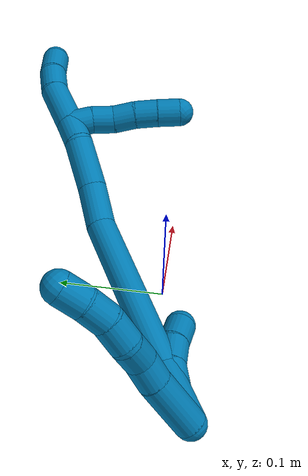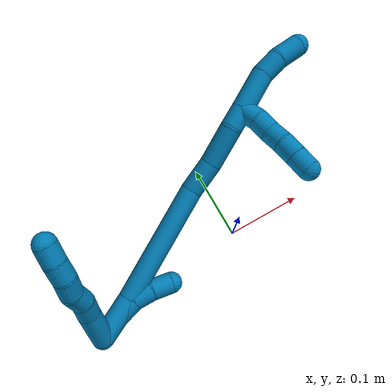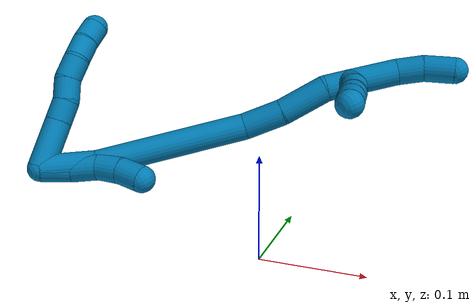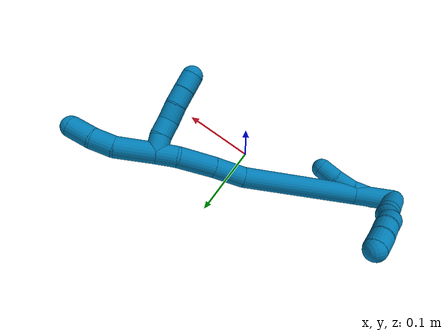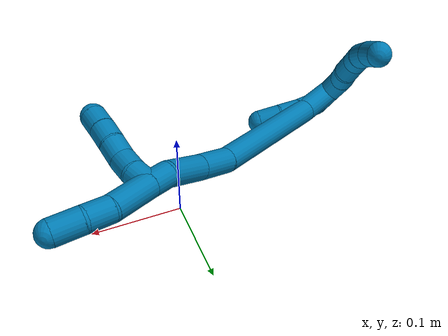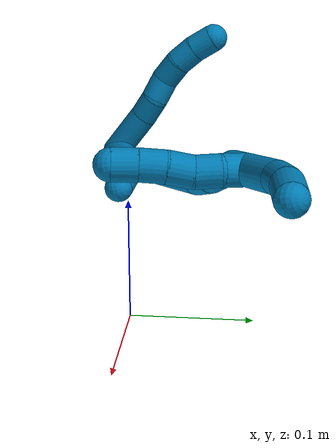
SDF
<sdf version="1.7">
 <world name="default">
  <model name="9">
   <static>0</static>
   <link name="9">
    <collision name="collision-cylinder-e_1_2_8">
     <pose>-0.009399 -0.012065 0.017365 0.607242 -0.418296 -0.132805</pose>
     <geometry><cylinder><radius>0.0125</radius><length>0.04628</length></cylinder></geometry>
     <surface>
      <friction><ode><mu>1.16</mu><mu2>1.16</mu2><slip1>0</slip1><slip2>0</slip2></ode></friction>
      <contact><ode><kp>1e+06</kp><kd>1</kd><max_vel>0</max_vel><min_depth>0.001</min_depth></ode></contact>
     </surface>
    </collision>
    <visual name="visual-cylinder-e_1_2_8">
     <pose>-0.009399 -0.012065 0.017365 0.607242 -0.418296 -0.132805</pose>
     <geometry><cylinder><radius>0.0125</radius><length>0.04628</length></cylinder></geometry>
     <material><ambient>0 0.490196 0.709804 1</ambient></material>
    </visual>
    <collision name="collision-cylinder-e_2_8_9">
     <pose>-0.022232 -0.030338 0.042408 0.679841 -0.334618 -0.119312</pose>
     <geometry><cylinder><radius>0.0125</radius><length>0.020907</length></cylinder></geometry>
     <surface>
      <friction><ode><mu>1.16</mu><mu2>1.16</mu2><slip1>0</slip1><slip2>0</slip2></ode></friction>
      <contact><ode><kp>1e+06</kp><kd>1</kd><max_vel>0</max_vel><min_depth>0.001</min_depth></ode></contact>
     </surface>
    </collision>
    <visual name="visual-cylinder-e_2_8_9">
     <pose>-0.022232 -0.030338 0.042408 0.679841 -0.334618 -0.119312</pose>
     <geometry><cylinder><radius>0.0125</radius><length>0.020907</length></cylinder></geometry>
     <material><ambient>0 0.490196 0.709804 1</ambient></material>
    </visual>
    <collision name="collision-cylinder-e_3_9_10">
     <pose>-0.031421 -0.04313 0.055747 0.860724 -0.58533 -0.274901</pose>
     <geometry><cylinder><radius>0.0125</radius><length>0.020835</length></cylinder></geometry>
     <surface>
      <friction><ode><mu>1.16</mu><mu2>1.16</mu2><slip1>0</slip1><slip2>0</slip2></ode></friction>
      <contact><ode><kp>1e+06</kp><kd>1</kd><max_vel>0</max_vel><min_depth>0.001</min_depth></ode></contact>
     </surface>
    </collision>
    <visual name="visual-cylinder-e_3_9_10">
     <pose>-0.031421 -0.04313 0.055747 0.860724 -0.58533 -0.274901</pose>
     <geometry><cylinder><radius>0.0125</radius><length>0.020835</length></cylinder></geometry>
     <material><ambient>0 0.490196 0.709804 1</ambient></material>
    </visual>
    <collision name="collision-cylinder-e_4_10_11">
     <pose>-0.04088 -0.055259 0.0699 0.578396 -0.35016 -0.105167</pose>
     <geometry><cylinder><radius>0.0125</radius><length>0.021594</length></cylinder></geometry>
     <surface>
      <friction><ode><mu>1.16</mu><mu2>1.16</mu2><slip1>0</slip1><slip2>0</slip2></ode></friction>
      <contact><ode><kp>1e+06</kp><kd>1</kd><max_vel>0</max_vel><min_depth>0.001</min_depth></ode></contact>
     </surface>
    </collision>
    <visual name="visual-cylinder-e_4_10_11">
     <pose>-0.04088 -0.055259 0.0699 0.578396 -0.35016 -0.105167</pose>
     <geometry><cylinder><radius>0.0125</radius><length>0.021594</length></cylinder></geometry>
     <material><ambient>0 0.490196 0.709804 1</ambient></material>
    </visual>
    <collision name="collision-cylinder-e_5_11_12">
     <pose>-0.049551 -0.064051 0.086561 0.378399 -0.514317 -0.100631</pose>
     <geometry><cylinder><radius>0.0125</radius><length>0.020195</length></cylinder></geometry>
     <surface>
      <friction><ode><mu>1.16</mu><mu2>1.16</mu2><slip1>0</slip1><slip2>0</slip2></ode></friction>
      <contact><ode><kp>1e+06</kp><kd>1</kd><max_vel>0</max_vel><min_depth>0.001</min_depth></ode></contact>
     </surface>
    </collision>
    <visual name="visual-cylinder-e_5_11_12">
     <pose>-0.049551 -0.064051 0.086561 0.378399 -0.514317 -0.100631</pose>
     <geometry><cylinder><radius>0.0125</radius><length>0.020195</length></cylinder></geometry>
     <material><ambient>0 0.490196 0.709804 1</ambient></material>
    </visual>
    <collision name="collision-cylinder-e_6_12_6">
     <pose>-0.059357 -0.069108 0.103403 0.205622 -0.499874 -0.052664</pose>
     <geometry><cylinder><radius>0.0125</radius><length>0.020189</length></cylinder></geometry>
     <surface>
      <friction><ode><mu>1.16</mu><mu2>1.16</mu2><slip1>0</slip1><slip2>0</slip2></ode></friction>
      <contact><ode><kp>1e+06</kp><kd>1</kd><max_vel>0</max_vel><min_depth>0.001</min_depth></ode></contact>
     </surface>
    </collision>
    <visual name="visual-cylinder-e_6_12_6">
     <pose>-0.059357 -0.069108 0.103403 0.205622 -0.499874 -0.052664</pose>
     <geometry><cylinder><radius>0.0125</radius><length>0.020189</length></cylinder></geometry>
     <material><ambient>0 0.490196 0.709804 1</ambient></material>
    </visual>
    <collision name="collision-cylinder-e_1_2_13">
     <pose>0.007615 0.00251 0.01142 -0.216388 0.577305 -0.064485</pose>
     <geometry><cylinder><radius>0.0125</radius><length>0.027907</length></cylinder></geometry>
     <surface>
      <friction><ode><mu>1.16</mu><mu2>1.16</mu2><slip1>0</slip1><slip2>0</slip2></ode></friction>
      <contact><ode><kp>1e+06</kp><kd>1</kd><max_vel>0</max_vel><min_depth>0.001</min_depth></ode></contact>
     </surface>
    </collision>
    <visual name="visual-cylinder-e_1_2_13">
     <pose>0.007615 0.00251 0.01142 -0.216388 0.577305 -0.064485</pose>
     <geometry><cylinder><radius>0.0125</radius><length>0.027907</length></cylinder></geometry>
     <material><ambient>0 0.490196 0.709804 1</ambient></material>
    </visual>
    <collision name="collision-cylinder-e_2_13_14">
     <pose>0.023658 0.004211 0.032641 0.082401 0.708426 0.030488</pose>
     <geometry><cylinder><radius>0.0125</radius><length>0.025904</length></cylinder></geometry>
     <surface>
      <friction><ode><mu>1.16</mu><mu2>1.16</mu2><slip1>0</slip1><slip2>0</slip2></ode></friction>
      <contact><ode><kp>1e+06</kp><kd>1</kd><max_vel>0</max_vel><min_depth>0.001</min_depth></ode></contact>
     </surface>
    </collision>
    <visual name="visual-cylinder-e_2_13_14">
     <pose>0.023658 0.004211 0.032641 0.082401 0.708426 0.030488</pose>
     <geometry><cylinder><radius>0.0125</radius><length>0.025904</length></cylinder></geometry>
     <material><ambient>0 0.490196 0.709804 1</ambient></material>
    </visual>
    <collision name="collision-cylinder-e_3_14_15">
     <pose>0.041918 0.003079 0.048305 0.054972 1.0326 0.031211</pose>
     <geometry><cylinder><radius>0.0125</radius><length>0.022904</length></cylinder></geometry>
     <surface>
      <friction><ode><mu>1.16</mu><mu2>1.16</mu2><slip1>0</slip1><slip2>0</slip2></ode></friction>
      <contact><ode><kp>1e+06</kp><kd>1</kd><max_vel>0</max_vel><min_depth>0.001</min_depth></ode></contact>
     </surface>
    </collision>
    <visual name="visual-cylinder-e_3_14_15">
     <pose>0.041918 0.003079 0.048305 0.054972 1.0326 0.031211</pose>
     <geometry><cylinder><radius>0.0125</radius><length>0.022904</length></cylinder></geometry>
     <material><ambient>0 0.490196 0.709804 1</ambient></material>
    </visual>
    <collision name="collision-cylinder-e_4_15_5">
     <pose>0.06261 0.003277 0.058332 -0.12425 1.20186 -0.085232</pose>
     <geometry><cylinder><radius>0.0125</radius><length>0.023285</length></cylinder></geometry>
     <surface>
      <friction><ode><mu>1.16</mu><mu2>1.16</mu2><slip1>0</slip1><slip2>0</slip2></ode></friction>
      <contact><ode><kp>1e+06</kp><kd>1</kd><max_vel>0</max_vel><min_depth>0.001</min_depth></ode></contact>
     </surface>
    </collision>
    <visual name="visual-cylinder-e_4_15_5">
     <pose>0.06261 0.003277 0.058332 -0.12425 1.20186 -0.085232</pose>
     <geometry><cylinder><radius>0.0125</radius><length>0.023285</length></cylinder></geometry>
     <material><ambient>0 0.490196 0.709804 1</ambient></material>
    </visual>
    <collision name="collision-cylinder-e_1_2_16">
     <pose>0.013161 0.002065 0.02176 -0.094636 0.541952 -0.026309</pose>
     <geometry><cylinder><radius>0.0125</radius><length>0.051029</length></cylinder></geometry>
     <surface>
      <friction><ode><mu>1.16</mu><mu2>1.16</mu2><slip1>0</slip1><slip2>0</slip2></ode></friction>
      <contact><ode><kp>1e+06</kp><kd>1</kd><max_vel>0</max_vel><min_depth>0.001</min_depth></ode></contact>
     </surface>
    </collision>
    <visual name="visual-cylinder-e_1_2_16">
     <pose>0.013161 0.002065 0.02176 -0.094636 0.541952 -0.026309</pose>
     <geometry><cylinder><radius>0.0125</radius><length>0.051029</length></cylinder></geometry>
     <material><ambient>0 0.490196 0.709804 1</ambient></material>
    </visual>
    <collision name="collision-cylinder-e_2_16_17">
     <pose>0.057274 0.000138 0.107004 0.062816 0.452884 0.014477</pose>
     <geometry><cylinder><radius>0.0125</radius><length>0.14148</length></cylinder></geometry>
     <surface>
      <friction><ode><mu>1.16</mu><mu2>1.16</mu2><slip1>0</slip1><slip2>0</slip2></ode></friction>
      <contact><ode><kp>1e+06</kp><kd>1</kd><max_vel>0</max_vel><min_depth>0.001</min_depth></ode></contact>
     </surface>
    </collision>
    <visual name="visual-cylinder-e_2_16_17">
     <pose>0.057274 0.000138 0.107004 0.062816 0.452884 0.014477</pose>
     <geometry><cylinder><radius>0.0125</radius><length>0.14148</length></cylinder></geometry>
     <material><ambient>0 0.490196 0.709804 1</ambient></material>
    </visual>
    <collision name="collision-cylinder-e_3_17_18">
     <pose>0.097306 -0.008777 0.186568 0.297044 0.495032 0.075583</pose>
     <geometry><cylinder><radius>0.0125</radius><length>0.038222</length></cylinder></geometry>
     <surface>
      <friction><ode><mu>1.16</mu><mu2>1.16</mu2><slip1>0</slip1><slip2>0</slip2></ode></friction>
      <contact><ode><kp>1e+06</kp><kd>1</kd><max_vel>0</max_vel><min_depth>0.001</min_depth></ode></contact>
     </surface>
    </collision>
    <visual name="visual-cylinder-e_3_17_18">
     <pose>0.097306 -0.008777 0.186568 0.297044 0.495032 0.075583</pose>
     <geometry><cylinder><radius>0.0125</radius><length>0.038222</length></cylinder></geometry>
     <material><ambient>0 0.490196 0.709804 1</ambient></material>
    </visual>
    <collision name="collision-cylinder-e_4_18_19">
     <pose>0.114485 -0.021327 0.222646 0.364387 0.361788 0.067366</pose>
     <geometry><cylinder><radius>0.0125</radius><length>0.045771</length></cylinder></geometry>
     <surface>
      <friction><ode><mu>1.16</mu><mu2>1.16</mu2><slip1>0</slip1><slip2>0</slip2></ode></friction>
      <contact><ode><kp>1e+06</kp><kd>1</kd><max_vel>0</max_vel><min_depth>0.001</min_depth></ode></contact>
     </surface>
    </collision>
    <visual name="visual-cylinder-e_4_18_19">
     <pose>0.114485 -0.021327 0.222646 0.364387 0.361788 0.067366</pose>
     <geometry><cylinder><radius>0.0125</radius><length>0.045771</length></cylinder></geometry>
     <material><ambient>0 0.490196 0.709804 1</ambient></material>
    </visual>
    <collision name="collision-cylinder-e_5_19_1">
     <pose>0.127921 -0.029653 0.253089 0.066709 0.471415 0.016027</pose>
     <geometry><cylinder><radius>0.0125</radius><length>0.023498</length></cylinder></geometry>
     <surface>
      <friction><ode><mu>1.16</mu><mu2>1.16</mu2><slip1>0</slip1><slip2>0</slip2></ode></friction>
      <contact><ode><kp>1e+06</kp><kd>1</kd><max_vel>0</max_vel><min_depth>0.001</min_depth></ode></contact>
     </surface>
    </collision>
    <visual name="visual-cylinder-e_5_19_1">
     <pose>0.127921 -0.029653 0.253089 0.066709 0.471415 0.016027</pose>
     <geometry><cylinder><radius>0.0125</radius><length>0.023498</length></cylinder></geometry>
     <material><ambient>0 0.490196 0.709804 1</ambient></material>
    </visual>
    <collision name="collision-cylinder-e_1_1_20">
     <pose>0.140823 -0.03478 0.258723 2.39745 0.858013 1.72895</pose>
     <geometry><cylinder><radius>0.0125</radius><length>0.02</length></cylinder></geometry>
     <surface>
      <friction><ode><mu>1.16</mu><mu2>1.16</mu2><slip1>0</slip1><slip2>0</slip2></ode></friction>
      <contact><ode><kp>1e+06</kp><kd>1</kd><max_vel>0</max_vel><min_depth>0.001</min_depth></ode></contact>
     </surface>
    </collision>
    <visual name="visual-cylinder-e_1_1_20">
     <pose>0.140823 -0.03478 0.258723 2.39745 0.858013 1.72895</pose>
     <geometry><cylinder><radius>0.0125</radius><length>0.02</length></cylinder></geometry>
     <material><ambient>0 0.490196 0.709804 1</ambient></material>
    </visual>
    <collision name="collision-cylinder-e_2_20_21">
     <pose>0.154862 -0.042816 0.247198 2.64875 0.70419 1.94092</pose>
     <geometry><cylinder><radius>0.0125</radius><length>0.02</length></cylinder></geometry>
     <surface>
      <friction><ode><mu>1.16</mu><mu2>1.16</mu2><slip1>0</slip1><slip2>0</slip2></ode></friction>
      <contact><ode><kp>1e+06</kp><kd>1</kd><max_vel>0</max_vel><min_depth>0.001</min_depth></ode></contact>
     </surface>
    </collision>
    <visual name="visual-cylinder-e_2_20_21">
     <pose>0.154862 -0.042816 0.247198 2.64875 0.70419 1.94092</pose>
     <geometry><cylinder><radius>0.0125</radius><length>0.02</length></cylinder></geometry>
     <material><ambient>0 0.490196 0.709804 1</ambient></material>
    </visual>
    <collision name="collision-cylinder-e_3_21_22">
     <pose>0.166865 -0.052239 0.234518 2.36876 0.58579 1.27568</pose>
     <geometry><cylinder><radius>0.0125</radius><length>0.02</length></cylinder></geometry>
     <surface>
      <friction><ode><mu>1.16</mu><mu2>1.16</mu2><slip1>0</slip1><slip2>0</slip2></ode></friction>
      <contact><ode><kp>1e+06</kp><kd>1</kd><max_vel>0</max_vel><min_depth>0.001</min_depth></ode></contact>
     </surface>
    </collision>
    <visual name="visual-cylinder-e_3_21_22">
     <pose>0.166865 -0.052239 0.234518 2.36876 0.58579 1.27568</pose>
     <geometry><cylinder><radius>0.0125</radius><length>0.02</length></cylinder></geometry>
     <material><ambient>0 0.490196 0.709804 1</ambient></material>
    </visual>
    <collision name="collision-cylinder-e_4_22_23">
     <pose>0.178131 -0.062729 0.221825 2.53453 0.611118 1.57789</pose>
     <geometry><cylinder><radius>0.0125</radius><length>0.02</length></cylinder></geometry>
     <surface>
      <friction><ode><mu>1.16</mu><mu2>1.16</mu2><slip1>0</slip1><slip2>0</slip2></ode></friction>
      <contact><ode><kp>1e+06</kp><kd>1</kd><max_vel>0</max_vel><min_depth>0.001</min_depth></ode></contact>
     </surface>
    </collision>
    <visual name="visual-cylinder-e_4_22_23">
     <pose>0.178131 -0.062729 0.221825 2.53453 0.611118 1.57789</pose>
     <geometry><cylinder><radius>0.0125</radius><length>0.02</length></cylinder></geometry>
     <material><ambient>0 0.490196 0.709804 1</ambient></material>
    </visual>
    <collision name="collision-cylinder-e_5_23_4">
     <pose>0.189891 -0.071509 0.208253 2.60108 0.646241 1.75923</pose>
     <geometry><cylinder><radius>0.0125</radius><length>0.02</length></cylinder></geometry>
     <surface>
      <friction><ode><mu>1.16</mu><mu2>1.16</mu2><slip1>0</slip1><slip2>0</slip2></ode></friction>
      <contact><ode><kp>1e+06</kp><kd>1</kd><max_vel>0</max_vel><min_depth>0.001</min_depth></ode></contact>
     </surface>
    </collision>
    <visual name="visual-cylinder-e_5_23_4">
     <pose>0.189891 -0.071509 0.208253 2.60108 0.646241 1.75923</pose>
     <geometry><cylinder><radius>0.0125</radius><length>0.02</length></cylinder></geometry>
     <material><ambient>0 0.490196 0.709804 1</ambient></material>
    </visual>
    <collision name="collision-cylinder-e_1_1_24">
     <pose>0.143406 -0.03113 0.284199 0.037691 0.456213 0.008751</pose>
     <geometry><cylinder><radius>0.0125</radius><length>0.046072</length></cylinder></geometry>
     <surface>
      <friction><ode><mu>1.16</mu><mu2>1.16</mu2><slip1>0</slip1><slip2>0</slip2></ode></friction>
      <contact><ode><kp>1e+06</kp><kd>1</kd><max_vel>0</max_vel><min_depth>0.001</min_depth></ode></contact>
     </surface>
    </collision>
    <visual name="visual-cylinder-e_1_1_24">
     <pose>0.143406 -0.03113 0.284199 0.037691 0.456213 0.008751</pose>
     <geometry><cylinder><radius>0.0125</radius><length>0.046072</length></cylinder></geometry>
     <material><ambient>0 0.490196 0.709804 1</ambient></material>
    </visual>
    <collision name="collision-cylinder-e_2_24_25">
     <pose>0.161657 -0.033232 0.314573 0.135446 0.690959 0.048814</pose>
     <geometry><cylinder><radius>0.0125</radius><length>0.025427</length></cylinder></geometry>
     <surface>
      <friction><ode><mu>1.16</mu><mu2>1.16</mu2><slip1>0</slip1><slip2>0</slip2></ode></friction>
      <contact><ode><kp>1e+06</kp><kd>1</kd><max_vel>0</max_vel><min_depth>0.001</min_depth></ode></contact>
     </surface>
    </collision>
    <visual name="visual-cylinder-e_2_24_25">
     <pose>0.161657 -0.033232 0.314573 0.135446 0.690959 0.048814</pose>
     <geometry><cylinder><radius>0.0125</radius><length>0.025427</length></cylinder></geometry>
     <material><ambient>0 0.490196 0.709804 1</ambient></material>
    </visual>
    <collision name="collision-cylinder-e_3_25_3">
     <pose>0.180985 -0.034577 0.333057 0.002456 0.907294 0.001197</pose>
     <geometry><cylinder><radius>0.0125</radius><length>0.0285</length></cylinder></geometry>
     <surface>
      <friction><ode><mu>1.16</mu><mu2>1.16</mu2><slip1>0</slip1><slip2>0</slip2></ode></friction>
      <contact><ode><kp>1e+06</kp><kd>1</kd><max_vel>0</max_vel><min_depth>0.001</min_depth></ode></contact>
     </surface>
    </collision>
    <visual name="visual-cylinder-e_3_25_3">
     <pose>0.180985 -0.034577 0.333057 0.002456 0.907294 0.001197</pose>
     <geometry><cylinder><radius>0.0125</radius><length>0.0285</length></cylinder></geometry>
     <material><ambient>0 0.490196 0.709804 1</ambient></material>
    </visual>
    <collision name="collision-sphere-3">
     <pose>0.192212 -0.034598 0.341833 0 -0 0</pose>
     <geometry><sphere><radius>0.0125</radius></sphere></geometry>
     <surface>
      <friction><ode><mu>1.16</mu><mu2>1.16</mu2><slip1>0</slip1><slip2>0</slip2></ode></friction>
      <contact><ode><kp>1e+06</kp><kd>1</kd><max_vel>0</max_vel><min_depth>0.001</min_depth></ode></contact>
     </surface>
    </collision>
    <visual name="visual-sphere-3">
     <pose>0.192212 -0.034598 0.341833 0 -0 0</pose>
     <geometry><sphere><radius>0.0125</radius></sphere></geometry>
     <material><ambient>0 0.490196 0.709804 1</ambient></material>
    </visual>
    <collision name="collision-sphere-25">
     <pose>0.169759 -0.034555 0.324281 0 -0 0</pose>
     <geometry><sphere><radius>0.0125</radius></sphere></geometry>
     <surface>
      <friction><ode><mu>1.16</mu><mu2>1.16</mu2><slip1>0</slip1><slip2>0</slip2></ode></friction>
      <contact><ode><kp>1e+06</kp><kd>1</kd><max_vel>0</max_vel><min_depth>0.001</min_depth></ode></contact>
     </surface>
    </collision>
    <visual name="visual-sphere-25">
     <pose>0.169759 -0.034555 0.324281 0 -0 0</pose>
     <geometry><sphere><radius>0.0125</radius></sphere></geometry>
     <material><ambient>0 0.490196 0.709804 1</ambient></material>
    </visual>
    <collision name="collision-sphere-24">
     <pose>0.153554 -0.031909 0.304865 0 -0 0</pose>
     <geometry><sphere><radius>0.0125</radius></sphere></geometry>
     <surface>
      <friction><ode><mu>1.16</mu><mu2>1.16</mu2><slip1>0</slip1><slip2>0</slip2></ode></friction>
      <contact><ode><kp>1e+06</kp><kd>1</kd><max_vel>0</max_vel><min_depth>0.001</min_depth></ode></contact>
     </surface>
    </collision>
    <visual name="visual-sphere-24">
     <pose>0.153554 -0.031909 0.304865 0 -0 0</pose>
     <geometry><sphere><radius>0.0125</radius></sphere></geometry>
     <material><ambient>0 0.490196 0.709804 1</ambient></material>
    </visual>
    <collision name="collision-sphere-4">
     <pose>0.195913 -0.075617 0.201408 0 -0 0</pose>
     <geometry><sphere><radius>0.0125</radius></sphere></geometry>
     <surface>
      <friction><ode><mu>1.16</mu><mu2>1.16</mu2><slip1>0</slip1><slip2>0</slip2></ode></friction>
      <contact><ode><kp>1e+06</kp><kd>1</kd><max_vel>0</max_vel><min_depth>0.001</min_depth></ode></contact>
     </surface>
    </collision>
    <visual name="visual-sphere-4">
     <pose>0.195913 -0.075617 0.201408 0 -0 0</pose>
     <geometry><sphere><radius>0.0125</radius></sphere></geometry>
     <material><ambient>0 0.490196 0.709804 1</ambient></material>
    </visual>
    <collision name="collision-sphere-23">
     <pose>0.183869 -0.067401 0.215099 0 -0 0</pose>
     <geometry><sphere><radius>0.0125</radius></sphere></geometry>
     <surface>
      <friction><ode><mu>1.16</mu><mu2>1.16</mu2><slip1>0</slip1><slip2>0</slip2></ode></friction>
      <contact><ode><kp>1e+06</kp><kd>1</kd><max_vel>0</max_vel><min_depth>0.001</min_depth></ode></contact>
     </surface>
    </collision>
    <visual name="visual-sphere-23">
     <pose>0.183869 -0.067401 0.215099 0 -0 0</pose>
     <geometry><sphere><radius>0.0125</radius></sphere></geometry>
     <material><ambient>0 0.490196 0.709804 1</ambient></material>
    </visual>
    <collision name="collision-sphere-22">
     <pose>0.172394 -0.058057 0.228552 0 -0 0</pose>
     <geometry><sphere><radius>0.0125</radius></sphere></geometry>
     <surface>
      <friction><ode><mu>1.16</mu><mu2>1.16</mu2><slip1>0</slip1><slip2>0</slip2></ode></friction>
      <contact><ode><kp>1e+06</kp><kd>1</kd><max_vel>0</max_vel><min_depth>0.001</min_depth></ode></contact>
     </surface>
    </collision>
    <visual name="visual-sphere-22">
     <pose>0.172394 -0.058057 0.228552 0 -0 0</pose>
     <geometry><sphere><radius>0.0125</radius></sphere></geometry>
     <material><ambient>0 0.490196 0.709804 1</ambient></material>
    </visual>
    <collision name="collision-sphere-21">
     <pose>0.161336 -0.046422 0.240483 0 -0 0</pose>
     <geometry><sphere><radius>0.0125</radius></sphere></geometry>
     <surface>
      <friction><ode><mu>1.16</mu><mu2>1.16</mu2><slip1>0</slip1><slip2>0</slip2></ode></friction>
      <contact><ode><kp>1e+06</kp><kd>1</kd><max_vel>0</max_vel><min_depth>0.001</min_depth></ode></contact>
     </surface>
    </collision>
    <visual name="visual-sphere-21">
     <pose>0.161336 -0.046422 0.240483 0 -0 0</pose>
     <geometry><sphere><radius>0.0125</radius></sphere></geometry>
     <material><ambient>0 0.490196 0.709804 1</ambient></material>
    </visual>
    <collision name="collision-sphere-20">
     <pose>0.148388 -0.03921 0.253912 0 -0 0</pose>
     <geometry><sphere><radius>0.0125</radius></sphere></geometry>
     <surface>
      <friction><ode><mu>1.16</mu><mu2>1.16</mu2><slip1>0</slip1><slip2>0</slip2></ode></friction>
      <contact><ode><kp>1e+06</kp><kd>1</kd><max_vel>0</max_vel><min_depth>0.001</min_depth></ode></contact>
     </surface>
    </collision>
    <visual name="visual-sphere-20">
     <pose>0.148388 -0.03921 0.253912 0 -0 0</pose>
     <geometry><sphere><radius>0.0125</radius></sphere></geometry>
     <material><ambient>0 0.490196 0.709804 1</ambient></material>
    </visual>
    <collision name="collision-sphere-12">
     <pose>-0.054519 -0.067299 0.09473 0 -0 0</pose>
     <geometry><sphere><radius>0.0125</radius></sphere></geometry>
     <surface>
      <friction><ode><mu>1.16</mu><mu2>1.16</mu2><slip1>0</slip1><slip2>0</slip2></ode></friction>
      <contact><ode><kp>1e+06</kp><kd>1</kd><max_vel>0</max_vel><min_depth>0.001</min_depth></ode></contact>
     </surface>
    </collision>
    <visual name="visual-sphere-12">
     <pose>-0.054519 -0.067299 0.09473 0 -0 0</pose>
     <geometry><sphere><radius>0.0125</radius></sphere></geometry>
     <material><ambient>0 0.490196 0.709804 1</ambient></material>
    </visual>
    <collision name="collision-sphere-11">
     <pose>-0.044584 -0.060803 0.078392 0 -0 0</pose>
     <geometry><sphere><radius>0.0125</radius></sphere></geometry>
     <surface>
      <friction><ode><mu>1.16</mu><mu2>1.16</mu2><slip1>0</slip1><slip2>0</slip2></ode></friction>
      <contact><ode><kp>1e+06</kp><kd>1</kd><max_vel>0</max_vel><min_depth>0.001</min_depth></ode></contact>
     </surface>
    </collision>
    <visual name="visual-sphere-11">
     <pose>-0.044584 -0.060803 0.078392 0 -0 0</pose>
     <geometry><sphere><radius>0.0125</radius></sphere></geometry>
     <material><ambient>0 0.490196 0.709804 1</ambient></material>
    </visual>
    <collision name="collision-sphere-10">
     <pose>-0.037176 -0.049715 0.061408 0 -0 0</pose>
     <geometry><sphere><radius>0.0125</radius></sphere></geometry>
     <surface>
      <friction><ode><mu>1.16</mu><mu2>1.16</mu2><slip1>0</slip1><slip2>0</slip2></ode></friction>
      <contact><ode><kp>1e+06</kp><kd>1</kd><max_vel>0</max_vel><min_depth>0.001</min_depth></ode></contact>
     </surface>
    </collision>
    <visual name="visual-sphere-10">
     <pose>-0.037176 -0.049715 0.061408 0 -0 0</pose>
     <geometry><sphere><radius>0.0125</radius></sphere></geometry>
     <material><ambient>0 0.490196 0.709804 1</ambient></material>
    </visual>
    <collision name="collision-sphere-9">
     <pose>-0.025665 -0.036545 0.050086 0 -0 0</pose>
     <geometry><sphere><radius>0.0125</radius></sphere></geometry>
     <surface>
      <friction><ode><mu>1.16</mu><mu2>1.16</mu2><slip1>0</slip1><slip2>0</slip2></ode></friction>
      <contact><ode><kp>1e+06</kp><kd>1</kd><max_vel>0</max_vel><min_depth>0.001</min_depth></ode></contact>
     </surface>
    </collision>
    <visual name="visual-sphere-9">
     <pose>-0.025665 -0.036545 0.050086 0 -0 0</pose>
     <geometry><sphere><radius>0.0125</radius></sphere></geometry>
     <material><ambient>0 0.490196 0.709804 1</ambient></material>
    </visual>
    <collision name="collision-sphere-2">
     <geometry><sphere><radius>0.0125</radius></sphere></geometry>
     <surface>
      <friction><ode><mu>1.16</mu><mu2>1.16</mu2><slip1>0</slip1><slip2>0</slip2></ode></friction>
      <contact><ode><kp>1e+06</kp><kd>1</kd><max_vel>0</max_vel><min_depth>0.001</min_depth></ode></contact>
     </surface>
    </collision>
    <visual name="visual-sphere-2">
     <geometry><sphere><radius>0.0125</radius></sphere></geometry>
     <material><ambient>0 0.490196 0.709804 1</ambient></material>
    </visual>
    <collision name="collision-sphere-19">
     <pose>0.122585 -0.028955 0.242645 0 -0 0</pose>
     <geometry><sphere><radius>0.0125</radius></sphere></geometry>
     <surface>
      <friction><ode><mu>1.16</mu><mu2>1.16</mu2><slip1>0</slip1><slip2>0</slip2></ode></friction>
      <contact><ode><kp>1e+06</kp><kd>1</kd><max_vel>0</max_vel><min_depth>0.001</min_depth></ode></contact>
     </surface>
    </collision>
    <visual name="visual-sphere-19">
     <pose>0.122585 -0.028955 0.242645 0 -0 0</pose>
     <geometry><sphere><radius>0.0125</radius></sphere></geometry>
     <material><ambient>0 0.490196 0.709804 1</ambient></material>
    </visual>
    <collision name="collision-sphere-8">
     <pose>-0.018799 -0.024131 0.034729 0 -0 0</pose>
     <geometry><sphere><radius>0.0125</radius></sphere></geometry>
     <surface>
      <friction><ode><mu>1.16</mu><mu2>1.16</mu2><slip1>0</slip1><slip2>0</slip2></ode></friction>
      <contact><ode><kp>1e+06</kp><kd>1</kd><max_vel>0</max_vel><min_depth>0.001</min_depth></ode></contact>
     </surface>
    </collision>
    <visual name="visual-sphere-8">
     <pose>-0.018799 -0.024131 0.034729 0 -0 0</pose>
     <geometry><sphere><radius>0.0125</radius></sphere></geometry>
     <material><ambient>0 0.490196 0.709804 1</ambient></material>
    </visual>
    <collision name="collision-sphere-6">
     <pose>-0.064195 -0.070917 0.112076 0 -0 0</pose>
     <geometry><sphere><radius>0.0125</radius></sphere></geometry>
     <surface>
      <friction><ode><mu>1.16</mu><mu2>1.16</mu2><slip1>0</slip1><slip2>0</slip2></ode></friction>
      <contact><ode><kp>1e+06</kp><kd>1</kd><max_vel>0</max_vel><min_depth>0.001</min_depth></ode></contact>
     </surface>
    </collision>
    <visual name="visual-sphere-6">
     <pose>-0.064195 -0.070917 0.112076 0 -0 0</pose>
     <geometry><sphere><radius>0.0125</radius></sphere></geometry>
     <material><ambient>0 0.490196 0.709804 1</ambient></material>
    </visual>
    <collision name="collision-sphere-13">
     <pose>0.015231 0.005021 0.022839 0 -0 0</pose>
     <geometry><sphere><radius>0.0125</radius></sphere></geometry>
     <surface>
      <friction><ode><mu>1.16</mu><mu2>1.16</mu2><slip1>0</slip1><slip2>0</slip2></ode></friction>
      <contact><ode><kp>1e+06</kp><kd>1</kd><max_vel>0</max_vel><min_depth>0.001</min_depth></ode></contact>
     </surface>
    </collision>
    <visual name="visual-sphere-13">
     <pose>0.015231 0.005021 0.022839 0 -0 0</pose>
     <geometry><sphere><radius>0.0125</radius></sphere></geometry>
     <material><ambient>0 0.490196 0.709804 1</ambient></material>
    </visual>
    <collision name="collision-sphere-14">
     <pose>0.032085 0.003402 0.042443 0 -0 0</pose>
     <geometry><sphere><radius>0.0125</radius></sphere></geometry>
     <surface>
      <friction><ode><mu>1.16</mu><mu2>1.16</mu2><slip1>0</slip1><slip2>0</slip2></ode></friction>
      <contact><ode><kp>1e+06</kp><kd>1</kd><max_vel>0</max_vel><min_depth>0.001</min_depth></ode></contact>
     </surface>
    </collision>
    <visual name="visual-sphere-14">
     <pose>0.032085 0.003402 0.042443 0 -0 0</pose>
     <geometry><sphere><radius>0.0125</radius></sphere></geometry>
     <material><ambient>0 0.490196 0.709804 1</ambient></material>
    </visual>
    <collision name="collision-sphere-15">
     <pose>0.051751 0.002757 0.054166 0 -0 0</pose>
     <geometry><sphere><radius>0.0125</radius></sphere></geometry>
     <surface>
      <friction><ode><mu>1.16</mu><mu2>1.16</mu2><slip1>0</slip1><slip2>0</slip2></ode></friction>
      <contact><ode><kp>1e+06</kp><kd>1</kd><max_vel>0</max_vel><min_depth>0.001</min_depth></ode></contact>
     </surface>
    </collision>
    <visual name="visual-sphere-15">
     <pose>0.051751 0.002757 0.054166 0 -0 0</pose>
     <geometry><sphere><radius>0.0125</radius></sphere></geometry>
     <material><ambient>0 0.490196 0.709804 1</ambient></material>
    </visual>
    <collision name="collision-sphere-5">
     <pose>0.073469 0.003797 0.062498 0 -0 0</pose>
     <geometry><sphere><radius>0.0125</radius></sphere></geometry>
     <surface>
      <friction><ode><mu>1.16</mu><mu2>1.16</mu2><slip1>0</slip1><slip2>0</slip2></ode></friction>
      <contact><ode><kp>1e+06</kp><kd>1</kd><max_vel>0</max_vel><min_depth>0.001</min_depth></ode></contact>
     </surface>
    </collision>
    <visual name="visual-sphere-5">
     <pose>0.073469 0.003797 0.062498 0 -0 0</pose>
     <geometry><sphere><radius>0.0125</radius></sphere></geometry>
     <material><ambient>0 0.490196 0.709804 1</ambient></material>
    </visual>
    <collision name="collision-sphere-16">
     <pose>0.026321 0.004131 0.043521 0 -0 0</pose>
     <geometry><sphere><radius>0.0125</radius></sphere></geometry>
     <surface>
      <friction><ode><mu>1.16</mu><mu2>1.16</mu2><slip1>0</slip1><slip2>0</slip2></ode></friction>
      <contact><ode><kp>1e+06</kp><kd>1</kd><max_vel>0</max_vel><min_depth>0.001</min_depth></ode></contact>
     </surface>
    </collision>
    <visual name="visual-sphere-16">
     <pose>0.026321 0.004131 0.043521 0 -0 0</pose>
     <geometry><sphere><radius>0.0125</radius></sphere></geometry>
     <material><ambient>0 0.490196 0.709804 1</ambient></material>
    </visual>
    <collision name="collision-sphere-17">
     <pose>0.088227 -0.003855 0.170487 0 -0 0</pose>
     <geometry><sphere><radius>0.0125</radius></sphere></geometry>
     <surface>
      <friction><ode><mu>1.16</mu><mu2>1.16</mu2><slip1>0</slip1><slip2>0</slip2></ode></friction>
      <contact><ode><kp>1e+06</kp><kd>1</kd><max_vel>0</max_vel><min_depth>0.001</min_depth></ode></contact>
     </surface>
    </collision>
    <visual name="visual-sphere-17">
     <pose>0.088227 -0.003855 0.170487 0 -0 0</pose>
     <geometry><sphere><radius>0.0125</radius></sphere></geometry>
     <material><ambient>0 0.490196 0.709804 1</ambient></material>
    </visual>
    <collision name="collision-sphere-18">
     <pose>0.106385 -0.013699 0.202648 0 -0 0</pose>
     <geometry><sphere><radius>0.0125</radius></sphere></geometry>
     <surface>
      <friction><ode><mu>1.16</mu><mu2>1.16</mu2><slip1>0</slip1><slip2>0</slip2></ode></friction>
      <contact><ode><kp>1e+06</kp><kd>1</kd><max_vel>0</max_vel><min_depth>0.001</min_depth></ode></contact>
     </surface>
    </collision>
    <visual name="visual-sphere-18">
     <pose>0.106385 -0.013699 0.202648 0 -0 0</pose>
     <geometry><sphere><radius>0.0125</radius></sphere></geometry>
     <material><ambient>0 0.490196 0.709804 1</ambient></material>
    </visual>
    <collision name="collision-sphere-1">
     <pose>0.133257 -0.030351 0.263534 0 -0 0</pose>
     <geometry><sphere><radius>0.0125</radius></sphere></geometry>
     <surface>
      <friction><ode><mu>1.16</mu><mu2>1.16</mu2><slip1>0</slip1><slip2>0</slip2></ode></friction>
      <contact><ode><kp>1e+06</kp><kd>1</kd><max_vel>0</max_vel><min_depth>0.001</min_depth></ode></contact>
     </surface>
    </collision>
    <visual name="visual-sphere-1">
     <pose>0.133257 -0.030351 0.263534 0 -0 0</pose>
     <geometry><sphere><radius>0.0125</radius></sphere></geometry>
     <material><ambient>0 0.490196 0.709804 1</ambient></material>
    </visual>
    <inertial>
     <pose>0.069112 -0.021436 0.140452 0 -0 0</pose>
     <mass>0.75</mass>
     <inertia>
      <ixx>0.000307</ixx>
      <ixy>0</ixy>
      <ixz>0</ixz>
      <iyy>0.00031</iyy>
      <iyz>0</iyz>
      <izz>-6.6e-05</izz>
     </inertia>
    </inertial>
   </link>
   <pose>-0.198685 -0.039948 0.076948 -1.26937 0.250365 -0.512169</pose>
  </model>
 </world>
</sdf>
